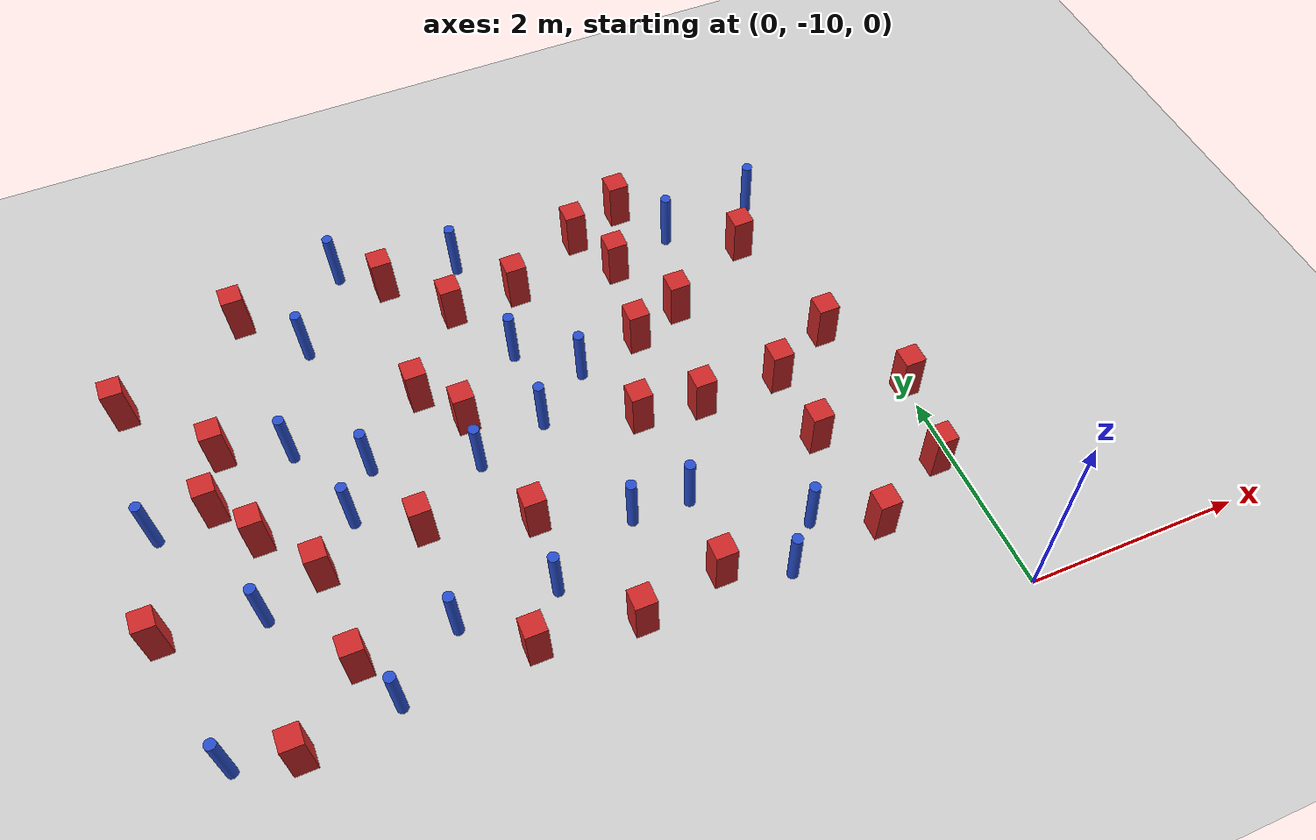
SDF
<sdf version="1.6">
 <world name="default">
  <model name="ground_plane">
   <static>1</static>
   <link name="link">
    <collision name="collision">
     <geometry><plane><normal>0 0 1</normal><size>100 100</size></plane></geometry>
     <surface><friction><ode><mu>100</mu><mu2>50</mu2></ode></friction></surface>
    </collision>
    <visual name="visual">
     <cast_shadows>0</cast_shadows>
     <geometry><plane><normal>0 0 1</normal><size>100 100</size></plane></geometry>
     <material>
      <ambient>1.0 1.0 1.0 1.0</ambient>
      <diffuse>0.8 0.8 0.8 1.0</diffuse>
      <specular>0.01 0.01 0.01 1.000000</specular>
     </material>
    </visual>
   </link>
  </model>
  <model name="pole_obstacle2">
   <static>true</static>
   <pose>-2.87501459005 -8.10694990462 2.88873142074e-08 -9.90536692318e-09 4.6021994893e-07 -1.20965994988e-07</pose>
   <link name="link">
    <pose>0 0 0.3 0 -0 0</pose>
    <inertial>
     <mass>1</mass>
     <inertia><ixx>0.145833</ixx><ixy>0</ixy><ixz>0</ixz><iyy>0.145833</iyy><iyz>0</iyz><izz>0.125</izz></inertia>
    </inertial>
    <collision name="collision">
     <geometry><cylinder><radius>0.05</radius><length>.6</length></cylinder></geometry>
    </collision>
    <visual name="visual">
     <geometry><cylinder><radius>0.05</radius><length>.6</length></cylinder></geometry>
     <material>
      <script><name>Gazebo/Blue</name><uri>file://media/materials/scripts/gazebo.material</uri></script>
     </material>
    </visual>
   </link>
  </model>
  <model name="pole_obstacle4">
   <static>true</static>
   <pose>-3.90233970964 -7.05207749594 2.88873142074e-08 -9.90536689859e-09 4.60219948989e-07 -1.20965994961e-07</pose>
   <link name="link">
    <pose>0 0 0.3 0 -0 0</pose>
    <inertial>
     <mass>1</mass>
     <inertia><ixx>0.145833</ixx><ixy>0</ixy><ixz>0</ixz><iyy>0.145833</iyy><iyz>0</iyz><izz>0.125</izz></inertia>
    </inertial>
    <collision name="collision">
     <geometry><cylinder><radius>0.05</radius><length>.6</length></cylinder></geometry>
    </collision>
    <visual name="visual">
     <geometry><cylinder><radius>0.05</radius><length>.6</length></cylinder></geometry>
     <material>
      <script><name>Gazebo/Blue</name><uri>file://media/materials/scripts/gazebo.material</uri></script>
     </material>
    </visual>
   </link>
  </model>
  <model name="square_post_obstacle8">
   <static>true</static>
   <pose>-3.8739137678 -6.55209940469 8.22691968438e-08 7.22125133819e-06 -7.54495500217e-07 2.29674213826e-05</pose>
   <link name="link">
    <pose>0 0 0.25 0 -0 0</pose>
    <inertial>
     <mass>100</mass>
     <inertia>
      <ixx>0.166667</ixx>
      <ixy>0</ixy>
      <ixz>0</ixz>
      <iyy>0.166667</iyy>
      <iyz>0</iyz>
      <izz>0.166667</izz>
     </inertia>
    </inertial>
    <collision name="collision"><geometry><box><size>.2 .2 .5</size></box></geometry></collision>
    <visual name="visual">
     <geometry><box><size>.2 .2 .5</size></box></geometry>
     <material>
      <script><name>Gazebo/Red</name><uri>file://media/materials/scripts/gazebo.material</uri></script>
     </material>
    </visual>
   </link>
  </model>
  <model name="square_post_obstacle12">
   <static>true</static>
   <pose>-0.0130934757853 -7.77081000379 8.22691968438e-08 7.2212513382e-06 -7.54495500217e-07 2.29674213826e-05</pose>
   <link name="link">
    <pose>0 0 0.25 0 -0 0</pose>
    <inertial>
     <mass>100</mass>
     <inertia>
      <ixx>0.166667</ixx>
      <ixy>0</ixy>
      <ixz>0</ixz>
      <iyy>0.166667</iyy>
      <iyz>0</iyz>
      <izz>0.166667</izz>
     </inertia>
    </inertial>
    <collision name="collision"><geometry><box><size>.2 .2 .5</size></box></geometry></collision>
    <visual name="visual">
     <geometry><box><size>.2 .2 .5</size></box></geometry>
     <material>
      <script><name>Gazebo/Red</name><uri>file://media/materials/scripts/gazebo.material</uri></script>
     </material>
    </visual>
   </link>
  </model>
  <model name="square_post_obstacle16">
   <static>true</static>
   <pose>-2.38865668269 -8.89311155857 8.22691968438e-08 7.22125133819e-06 -7.54495500217e-07 2.29674213826e-05</pose>
   <link name="link">
    <pose>0 0 0.25 0 -0 0</pose>
    <inertial>
     <mass>100</mass>
     <inertia>
      <ixx>0.166667</ixx>
      <ixy>0</ixy>
      <ixz>0</ixz>
      <iyy>0.166667</iyy>
      <iyz>0</iyz>
      <izz>0.166667</izz>
     </inertia>
    </inertial>
    <collision name="collision"><geometry><box><size>.2 .2 .5</size></box></geometry></collision>
    <visual name="visual">
     <geometry><box><size>.2 .2 .5</size></box></geometry>
     <material>
      <script><name>Gazebo/Red</name><uri>file://media/materials/scripts/gazebo.material</uri></script>
     </material>
    </visual>
   </link>
  </model>
  <model name="pole_obstacle10">
   <static>true</static>
   <pose>-4.81307879452 -6.70881083257 2.88873142074e-08 -9.90536690842e-09 4.60219948965e-07 -1.20965994976e-07</pose>
   <link name="link">
    <pose>0 0 0.3 0 -0 0</pose>
    <inertial>
     <mass>1</mass>
     <inertia><ixx>0.145833</ixx><ixy>0</ixy><ixz>0</ixz><iyy>0.145833</iyy><iyz>0</iyz><izz>0.125</izz></inertia>
    </inertial>
    <collision name="collision">
     <geometry><cylinder><radius>0.05</radius><length>.6</length></cylinder></geometry>
    </collision>
    <visual name="visual">
     <geometry><cylinder><radius>0.05</radius><length>.6</length></cylinder></geometry>
     <material>
      <script><name>Gazebo/Blue</name><uri>file://media/materials/scripts/gazebo.material</uri></script>
     </material>
    </visual>
   </link>
  </model>
  <model name="pole_obstacle17">
   <static>true</static>
   <pose>-5.20295871244 -8.97434271255 2.88873142074e-08 -9.9053668967e-09 4.60219948993e-07 -1.20965994957e-07</pose>
   <link name="link">
    <pose>0 0 0.3 0 -0 0</pose>
    <inertial>
     <mass>1</mass>
     <inertia><ixx>0.145833</ixx><ixy>0</ixy><ixz>0</ixz><iyy>0.145833</iyy><iyz>0</iyz><izz>0.125</izz></inertia>
    </inertial>
    <collision name="collision">
     <geometry><cylinder><radius>0.05</radius><length>.6</length></cylinder></geometry>
    </collision>
    <visual name="visual">
     <geometry><cylinder><radius>0.05</radius><length>.6</length></cylinder></geometry>
     <material>
      <script><name>Gazebo/Blue</name><uri>file://media/materials/scripts/gazebo.material</uri></script>
     </material>
    </visual>
   </link>
  </model>
  <model name="pole_obstacle20">
   <static>true</static>
   <pose>-1.83056929035 -9.12082638612 2.88873142074e-08 -9.90536690474e-09 4.60219948974e-07 -1.2096599497e-07</pose>
   <link name="link">
    <pose>0 0 0.3 0 -0 0</pose>
    <inertial>
     <mass>1</mass>
     <inertia><ixx>0.145833</ixx><ixy>0</ixy><ixz>0</ixz><iyy>0.145833</iyy><iyz>0</iyz><izz>0.125</izz></inertia>
    </inertial>
    <collision name="collision">
     <geometry><cylinder><radius>0.05</radius><length>.6</length></cylinder></geometry>
    </collision>
    <visual name="visual">
     <geometry><cylinder><radius>0.05</radius><length>.6</length></cylinder></geometry>
     <material>
      <script><name>Gazebo/Blue</name><uri>file://media/materials/scripts/gazebo.material</uri></script>
     </material>
    </visual>
   </link>
  </model>
  <model name="pole_obstacle31">
   <static>true</static>
   <pose>-3.22397470555 -5.99416637873 2.88873142074e-08 -9.90536692062e-09 4.60219948937e-07 -1.20965994985e-07</pose>
   <link name="link">
    <pose>0 0 0.3 0 -0 0</pose>
    <inertial>
     <mass>1</mass>
     <inertia><ixx>0.145833</ixx><ixy>0</ixy><ixz>0</ixz><iyy>0.145833</iyy><iyz>0</iyz><izz>0.125</izz></inertia>
    </inertial>
    <collision name="collision">
     <geometry><cylinder><radius>0.05</radius><length>.6</length></cylinder></geometry>
    </collision>
    <visual name="visual">
     <geometry><cylinder><radius>0.05</radius><length>.6</length></cylinder></geometry>
     <material>
      <script><name>Gazebo/Blue</name><uri>file://media/materials/scripts/gazebo.material</uri></script>
     </material>
    </visual>
   </link>
  </model>
  <model name="pole_obstacle36">
   <static>true</static>
   <pose>-5.00088033655 -5.20530753495 2.88873142074e-08 -9.90536690842e-09 4.60219948965e-07 -1.20965994976e-07</pose>
   <link name="link">
    <pose>0 0 0.3 0 -0 0</pose>
    <inertial>
     <mass>1</mass>
     <inertia><ixx>0.145833</ixx><ixy>0</ixy><ixz>0</ixz><iyy>0.145833</iyy><iyz>0</iyz><izz>0.125</izz></inertia>
    </inertial>
    <collision name="collision">
     <geometry><cylinder><radius>0.05</radius><length>.6</length></cylinder></geometry>
    </collision>
    <visual name="visual">
     <geometry><cylinder><radius>0.05</radius><length>.6</length></cylinder></geometry>
     <material>
      <script><name>Gazebo/Blue</name><uri>file://media/materials/scripts/gazebo.material</uri></script>
     </material>
    </visual>
   </link>
  </model>
  <model name="square_post_obstacle45">
   <static>true</static>
   <pose>-3.16748743163 -9.05147158468 8.22691968438e-08 7.22125133819e-06 -7.54495500217e-07 2.29674213826e-05</pose>
   <link name="link">
    <pose>0 0 0.25 0 -0 0</pose>
    <inertial>
     <mass>100</mass>
     <inertia>
      <ixx>0.166667</ixx>
      <ixy>0</ixy>
      <ixz>0</ixz>
      <iyy>0.166667</iyy>
      <iyz>0</iyz>
      <izz>0.166667</izz>
     </inertia>
    </inertial>
    <collision name="collision"><geometry><box><size>.2 .2 .5</size></box></geometry></collision>
    <visual name="visual">
     <geometry><box><size>.2 .2 .5</size></box></geometry>
     <material>
      <script><name>Gazebo/Red</name><uri>file://media/materials/scripts/gazebo.material</uri></script>
     </material>
    </visual>
   </link>
  </model>
  <model name="pole_obstacle49">
   <static>true</static>
   <pose>-5.4167512751 -6.29608324844 2.88873142074e-08 -9.90536690842e-09 4.60219948965e-07 -1.20965994976e-07</pose>
   <link name="link">
    <pose>0 0 0.3 0 -0 0</pose>
    <inertial>
     <mass>1</mass>
     <inertia><ixx>0.145833</ixx><ixy>0</ixy><ixz>0</ixz><iyy>0.145833</iyy><iyz>0</iyz><izz>0.125</izz></inertia>
    </inertial>
    <collision name="collision">
     <geometry><cylinder><radius>0.05</radius><length>.6</length></cylinder></geometry>
    </collision>
    <visual name="visual">
     <geometry><cylinder><radius>0.05</radius><length>.6</length></cylinder></geometry>
     <material>
      <script><name>Gazebo/Blue</name><uri>file://media/materials/scripts/gazebo.material</uri></script>
     </material>
    </visual>
   </link>
  </model>
  <model name="square_post_obstacle56">
   <static>true</static>
   <pose>-5.41987008127 -8.52091306603 8.22691968438e-08 7.22125133819e-06 -7.54495500217e-07 2.29674213826e-05</pose>
   <link name="link">
    <pose>0 0 0.25 0 -0 0</pose>
    <inertial>
     <mass>100</mass>
     <inertia>
      <ixx>0.166667</ixx>
      <ixy>0</ixy>
      <ixz>0</ixz>
      <iyy>0.166667</iyy>
      <iyz>0</iyz>
      <izz>0.166667</izz>
     </inertia>
    </inertial>
    <collision name="collision"><geometry><box><size>.2 .2 .5</size></box></geometry></collision>
    <visual name="visual">
     <geometry><box><size>.2 .2 .5</size></box></geometry>
     <material>
      <script><name>Gazebo/Red</name><uri>file://media/materials/scripts/gazebo.material</uri></script>
     </material>
    </visual>
   </link>
  </model>
  <model name="square_post_obstacle62">
   <static>true</static>
   <pose>-3.60067926143 -5.30959213133 8.22691968438e-08 7.22125133819e-06 -7.54495500217e-07 2.29674213826e-05</pose>
   <link name="link">
    <pose>0 0 0.25 0 -0 0</pose>
    <inertial>
     <mass>100</mass>
     <inertia>
      <ixx>0.166667</ixx>
      <ixy>0</ixy>
      <ixz>0</ixz>
      <iyy>0.166667</iyy>
      <iyz>0</iyz>
      <izz>0.166667</izz>
     </inertia>
    </inertial>
    <collision name="collision"><geometry><box><size>.2 .2 .5</size></box></geometry></collision>
    <visual name="visual">
     <geometry><box><size>.2 .2 .5</size></box></geometry>
     <material>
      <script><name>Gazebo/Red</name><uri>file://media/materials/scripts/gazebo.material</uri></script>
     </material>
    </visual>
   </link>
  </model>
  <model name="square_post_obstacle64">
   <static>true</static>
   <pose>-0.444316290733 -6.91461727366 8.22691968438e-08 7.22125133819e-06 -7.54495500217e-07 2.29674213826e-05</pose>
   <link name="link">
    <pose>0 0 0.25 0 -0 0</pose>
    <inertial>
     <mass>100</mass>
     <inertia>
      <ixx>0.166667</ixx>
      <ixy>0</ixy>
      <ixz>0</ixz>
      <iyy>0.166667</iyy>
      <iyz>0</iyz>
      <izz>0.166667</izz>
     </inertia>
    </inertial>
    <collision name="collision"><geometry><box><size>.2 .2 .5</size></box></geometry></collision>
    <visual name="visual">
     <geometry><box><size>.2 .2 .5</size></box></geometry>
     <material>
      <script><name>Gazebo/Red</name><uri>file://media/materials/scripts/gazebo.material</uri></script>
     </material>
    </visual>
   </link>
  </model>
  <model name="pole_obstacle64">
   <static>true</static>
   <pose>-1.32270077542 -5.1866796081 2.88873142074e-08 -9.90536689852e-09 4.60219948989e-07 -1.2096599496e-07</pose>
   <link name="link">
    <pose>0 0 0.3 0 -0 0</pose>
    <inertial>
     <mass>1</mass>
     <inertia><ixx>0.145833</ixx><ixy>0</ixy><ixz>0</ixz><iyy>0.145833</iyy><iyz>0</iyz><izz>0.125</izz></inertia>
    </inertial>
    <collision name="collision">
     <geometry><cylinder><radius>0.05</radius><length>.6</length></cylinder></geometry>
    </collision>
    <visual name="visual">
     <geometry><cylinder><radius>0.05</radius><length>.6</length></cylinder></geometry>
     <material>
      <script><name>Gazebo/Blue</name><uri>file://media/materials/scripts/gazebo.material</uri></script>
     </material>
    </visual>
   </link>
  </model>
  <model name="square_post_obstacle73">
   <static>true</static>
   <pose>-1.04860447023 -7.98856468562 8.22691968438e-08 7.2212513382e-06 -7.54495500217e-07 2.29674213826e-05</pose>
   <link name="link">
    <pose>0 0 0.25 0 -0 0</pose>
    <inertial>
     <mass>100</mass>
     <inertia>
      <ixx>0.166667</ixx>
      <ixy>0</ixy>
      <ixz>0</ixz>
      <iyy>0.166667</iyy>
      <iyz>0</iyz>
      <izz>0.166667</izz>
     </inertia>
    </inertial>
    <collision name="collision"><geometry><box><size>.2 .2 .5</size></box></geometry></collision>
    <visual name="visual">
     <geometry><box><size>.2 .2 .5</size></box></geometry>
     <material>
      <script><name>Gazebo/Red</name><uri>file://media/materials/scripts/gazebo.material</uri></script>
     </material>
    </visual>
   </link>
  </model>
  <model name="pole_obstacle73">
   <static>true</static>
   <pose>-2.34393781805 -8.12023684867 2.88873142074e-08 -9.90536692318e-09 4.6021994893e-07 -1.20965994988e-07</pose>
   <link name="link">
    <pose>0 0 0.3 0 -0 0</pose>
    <inertial>
     <mass>1</mass>
     <inertia><ixx>0.145833</ixx><ixy>0</ixy><ixz>0</ixz><iyy>0.145833</iyy><iyz>0</iyz><izz>0.125</izz></inertia>
    </inertial>
    <collision name="collision">
     <geometry><cylinder><radius>0.05</radius><length>.6</length></cylinder></geometry>
    </collision>
    <visual name="visual">
     <geometry><cylinder><radius>0.05</radius><length>.6</length></cylinder></geometry>
     <material>
      <script><name>Gazebo/Blue</name><uri>file://media/materials/scripts/gazebo.material</uri></script>
     </material>
    </visual>
   </link>
  </model>
  <model name="pole_obstacle79">
   <static>true</static>
   <pose>-6.00702644453 -7.81089971821 2.88873142074e-08 -9.90536690842e-09 4.60219948965e-07 -1.20965994976e-07</pose>
   <link name="link">
    <pose>0 0 0.3 0 -0 0</pose>
    <inertial>
     <mass>1</mass>
     <inertia><ixx>0.145833</ixx><ixy>0</ixy><ixz>0</ixz><iyy>0.145833</iyy><iyz>0</iyz><izz>0.125</izz></inertia>
    </inertial>
    <collision name="collision">
     <geometry><cylinder><radius>0.05</radius><length>.6</length></cylinder></geometry>
    </collision>
    <visual name="visual">
     <geometry><cylinder><radius>0.05</radius><length>.6</length></cylinder></geometry>
     <material>
      <script><name>Gazebo/Blue</name><uri>file://media/materials/scripts/gazebo.material</uri></script>
     </material>
    </visual>
   </link>
  </model>
  <model name="square_post_obstacle78">
   <static>true</static>
   <pose>-6.86558664157 -7.67625481982 8.22691968438e-08 7.22125133819e-06 -7.54495500217e-07 2.29674213826e-05</pose>
   <link name="link">
    <pose>0 0 0.25 0 -0 0</pose>
    <inertial>
     <mass>100</mass>
     <inertia>
      <ixx>0.166667</ixx>
      <ixy>0</ixy>
      <ixz>0</ixz>
      <iyy>0.166667</iyy>
      <iyz>0</iyz>
      <izz>0.166667</izz>
     </inertia>
    </inertial>
    <collision name="collision"><geometry><box><size>.2 .2 .5</size></box></geometry></collision>
    <visual name="visual">
     <geometry><box><size>.2 .2 .5</size></box></geometry>
     <material>
      <script><name>Gazebo/Red</name><uri>file://media/materials/scripts/gazebo.material</uri></script>
     </material>
    </visual>
   </link>
  </model>
  <model name="square_post_obstacle79">
   <static>true</static>
   <pose>-6.17730175886 -6.61611261569 8.22691968438e-08 7.22125133819e-06 -7.54495500217e-07 2.29674213826e-05</pose>
   <link name="link">
    <pose>0 0 0.25 0 -0 0</pose>
    <inertial>
     <mass>100</mass>
     <inertia>
      <ixx>0.166667</ixx>
      <ixy>0</ixy>
      <ixz>0</ixz>
      <iyy>0.166667</iyy>
      <iyz>0</iyz>
      <izz>0.166667</izz>
     </inertia>
    </inertial>
    <collision name="collision"><geometry><box><size>.2 .2 .5</size></box></geometry></collision>
    <visual name="visual">
     <geometry><box><size>.2 .2 .5</size></box></geometry>
     <material>
      <script><name>Gazebo/Red</name><uri>file://media/materials/scripts/gazebo.material</uri></script>
     </material>
    </visual>
   </link>
  </model>
  <model name="pole_obstacle80">
   <static>true</static>
   <pose>-5.09871578943 -7.17373712092 2.88873142074e-08 -9.90536690842e-09 4.60219948965e-07 -1.20965994976e-07</pose>
   <link name="link">
    <pose>0 0 0.3 0 -0 0</pose>
    <inertial>
     <mass>1</mass>
     <inertia><ixx>0.145833</ixx><ixy>0</ixy><ixz>0</ixz><iyy>0.145833</iyy><iyz>0</iyz><izz>0.125</izz></inertia>
    </inertial>
    <collision name="collision">
     <geometry><cylinder><radius>0.05</radius><length>.6</length></cylinder></geometry>
    </collision>
    <visual name="visual">
     <geometry><cylinder><radius>0.05</radius><length>.6</length></cylinder></geometry>
     <material>
      <script><name>Gazebo/Blue</name><uri>file://media/materials/scripts/gazebo.material</uri></script>
     </material>
    </visual>
   </link>
  </model>
  <model name="square_post_obstacle85">
   <static>true</static>
   <pose>-1.60249098794 -6.11279621864 8.22691968438e-08 7.2212513382e-06 -7.54495500217e-07 2.29674213826e-05</pose>
   <link name="link">
    <pose>0 0 0.25 0 -0 0</pose>
    <inertial>
     <mass>100</mass>
     <inertia>
      <ixx>0.166667</ixx>
      <ixy>0</ixy>
      <ixz>0</ixz>
      <iyy>0.166667</iyy>
      <iyz>0</iyz>
      <izz>0.166667</izz>
     </inertia>
    </inertial>
    <collision name="collision"><geometry><box><size>.2 .2 .5</size></box></geometry></collision>
    <visual name="visual">
     <geometry><box><size>.2 .2 .5</size></box></geometry>
     <material>
      <script><name>Gazebo/Red</name><uri>file://media/materials/scripts/gazebo.material</uri></script>
     </material>
    </visual>
   </link>
  </model>
  <model name="pole_obstacle97">
   <static>true</static>
   <pose>-1.47623477414 -8.73532969392 2.88873142074e-08 -9.90536690474e-09 4.60219948974e-07 -1.2096599497e-07</pose>
   <link name="link">
    <pose>0 0 0.3 0 -0 0</pose>
    <inertial>
     <mass>1</mass>
     <inertia><ixx>0.145833</ixx><ixy>0</ixy><ixz>0</ixz><iyy>0.145833</iyy><iyz>0</iyz><izz>0.125</izz></inertia>
    </inertial>
    <collision name="collision">
     <geometry><cylinder><radius>0.05</radius><length>.6</length></cylinder></geometry>
    </collision>
    <visual name="visual">
     <geometry><cylinder><radius>0.05</radius><length>.6</length></cylinder></geometry>
     <material>
      <script><name>Gazebo/Blue</name><uri>file://media/materials/scripts/gazebo.material</uri></script>
     </material>
    </visual>
   </link>
  </model>
  <model name="square_post_obstacle90">
   <static>true</static>
   <pose>-0.711123490053 -5.60636521563 8.22691968438e-08 7.22125133819e-06 -7.54495500217e-07 2.29674213826e-05</pose>
   <link name="link">
    <pose>0 0 0.25 0 -0 0</pose>
    <inertial>
     <mass>100</mass>
     <inertia>
      <ixx>0.166667</ixx>
      <ixy>0</ixy>
      <ixz>0</ixz>
      <iyy>0.166667</iyy>
      <iyz>0</iyz>
      <izz>0.166667</izz>
     </inertia>
    </inertial>
    <collision name="collision"><geometry><box><size>.2 .2 .5</size></box></geometry></collision>
    <visual name="visual">
     <geometry><box><size>.2 .2 .5</size></box></geometry>
     <material>
      <script><name>Gazebo/Red</name><uri>file://media/materials/scripts/gazebo.material</uri></script>
     </material>
    </visual>
   </link>
  </model>
  <model name="square_post_obstacle101">
   <static>true</static>
   <pose>-2.42103531964 -7.1605160482 8.22691968438e-08 7.2212513382e-06 -7.54495500217e-07 2.29674213826e-05</pose>
   <link name="link">
    <pose>0 0 0.25 0 -0 0</pose>
    <inertial>
     <mass>100</mass>
     <inertia>
      <ixx>0.166667</ixx>
      <ixy>0</ixy>
      <ixz>0</ixz>
      <iyy>0.166667</iyy>
      <iyz>0</iyz>
      <izz>0.166667</izz>
     </inertia>
    </inertial>
    <collision name="collision"><geometry><box><size>.2 .2 .5</size></box></geometry></collision>
    <visual name="visual">
     <geometry><box><size>.2 .2 .5</size></box></geometry>
     <material>
      <script><name>Gazebo/Red</name><uri>file://media/materials/scripts/gazebo.material</uri></script>
     </material>
    </visual>
   </link>
  </model>
  <model name="square_post_obstacle104">
   <static>true</static>
   <pose>-6.0065167676 -6.06761775669 8.22691968438e-08 7.2212513382e-06 -7.54495500217e-07 2.29674213826e-05</pose>
   <link name="link">
    <pose>0 0 0.25 0 -0 0</pose>
    <inertial>
     <mass>100</mass>
     <inertia>
      <ixx>0.166667</ixx>
      <ixy>0</ixy>
      <ixz>0</ixz>
      <iyy>0.166667</iyy>
      <iyz>0</iyz>
      <izz>0.166667</izz>
     </inertia>
    </inertial>
    <collision name="collision"><geometry><box><size>.2 .2 .5</size></box></geometry></collision>
    <visual name="visual">
     <geometry><box><size>.2 .2 .5</size></box></geometry>
     <material>
      <script><name>Gazebo/Red</name><uri>file://media/materials/scripts/gazebo.material</uri></script>
     </material>
    </visual>
   </link>
  </model>
  <model name="square_post_obstacle106">
   <static>true</static>
   <pose>-4.56661669629 -7.51678423853 8.22691968438e-08 7.22125133819e-06 -7.54495500217e-07 2.29674213826e-05</pose>
   <link name="link">
    <pose>0 0 0.25 0 -0 0</pose>
    <inertial>
     <mass>100</mass>
     <inertia>
      <ixx>0.166667</ixx>
      <ixy>0</ixy>
      <ixz>0</ixz>
      <iyy>0.166667</iyy>
      <iyz>0</iyz>
      <izz>0.166667</izz>
     </inertia>
    </inertial>
    <collision name="collision"><geometry><box><size>.2 .2 .5</size></box></geometry></collision>
    <visual name="visual">
     <geometry><box><size>.2 .2 .5</size></box></geometry>
     <material>
      <script><name>Gazebo/Red</name><uri>file://media/materials/scripts/gazebo.material</uri></script>
     </material>
    </visual>
   </link>
  </model>
  <model name="square_post_obstacle109">
   <static>true</static>
   <pose>-5.88440980798 -7.06308717809 8.22691968438e-08 7.2212513382e-06 -7.54495500217e-07 2.29674213826e-05</pose>
   <link name="link">
    <pose>0 0 0.25 0 -0 0</pose>
    <inertial>
     <mass>100</mass>
     <inertia>
      <ixx>0.166667</ixx>
      <ixy>0</ixy>
      <ixz>0</ixz>
      <iyy>0.166667</iyy>
      <iyz>0</iyz>
      <izz>0.166667</izz>
     </inertia>
    </inertial>
    <collision name="collision"><geometry><box><size>.2 .2 .5</size></box></geometry></collision>
    <visual name="visual">
     <geometry><box><size>.2 .2 .5</size></box></geometry>
     <material>
      <script><name>Gazebo/Red</name><uri>file://media/materials/scripts/gazebo.material</uri></script>
     </material>
    </visual>
   </link>
  </model>
  <model name="square_post_obstacle110">
   <static>true</static>
   <pose>-4.10595389363 -4.73077965813 8.22691968438e-08 7.22125133819e-06 -7.54495500217e-07 2.29674213826e-05</pose>
   <link name="link">
    <pose>0 0 0.25 0 -0 0</pose>
    <inertial>
     <mass>100</mass>
     <inertia>
      <ixx>0.166667</ixx>
      <ixy>0</ixy>
      <ixz>0</ixz>
      <iyy>0.166667</iyy>
      <iyz>0</iyz>
      <izz>0.166667</izz>
     </inertia>
    </inertial>
    <collision name="collision"><geometry><box><size>.2 .2 .5</size></box></geometry></collision>
    <visual name="visual">
     <geometry><box><size>.2 .2 .5</size></box></geometry>
     <material>
      <script><name>Gazebo/Red</name><uri>file://media/materials/scripts/gazebo.material</uri></script>
     </material>
    </visual>
   </link>
  </model>
  <model name="pole_obstacle128">
   <static>true</static>
   <pose>-4.58637959691 -8.50072938821 2.88873142074e-08 -9.9053668967e-09 4.60219948993e-07 -1.20965994957e-07</pose>
   <link name="link">
    <pose>0 0 0.3 0 -0 0</pose>
    <inertial>
     <mass>1</mass>
     <inertia><ixx>0.145833</ixx><ixy>0</ixy><ixz>0</ixz><iyy>0.145833</iyy><iyz>0</iyz><izz>0.125</izz></inertia>
    </inertial>
    <collision name="collision">
     <geometry><cylinder><radius>0.05</radius><length>.6</length></cylinder></geometry>
    </collision>
    <visual name="visual">
     <geometry><cylinder><radius>0.05</radius><length>.6</length></cylinder></geometry>
     <material>
      <script><name>Gazebo/Blue</name><uri>file://media/materials/scripts/gazebo.material</uri></script>
     </material>
    </visual>
   </link>
  </model>
  <model name="square_post_obstacle119">
   <static>true</static>
   <pose>-0.935623788651 -9.00504862148 8.22691968438e-08 7.22125133819e-06 -7.54495500217e-07 2.29674213826e-05</pose>
   <link name="link">
    <pose>0 0 0.25 0 -0 0</pose>
    <inertial>
     <mass>100</mass>
     <inertia>
      <ixx>0.166667</ixx>
      <ixy>0</ixy>
      <ixz>0</ixz>
      <iyy>0.166667</iyy>
      <iyz>0</iyz>
      <izz>0.166667</izz>
     </inertia>
    </inertial>
    <collision name="collision"><geometry><box><size>.2 .2 .5</size></box></geometry></collision>
    <visual name="visual">
     <geometry><box><size>.2 .2 .5</size></box></geometry>
     <material>
      <script><name>Gazebo/Red</name><uri>file://media/materials/scripts/gazebo.material</uri></script>
     </material>
    </visual>
   </link>
  </model>
  <model name="square_post_obstacle127">
   <static>true</static>
   <pose>-1.07332687941 -7.24230760317 8.22691968438e-08 7.22125133819e-06 -7.54495500217e-07 2.29674213826e-05</pose>
   <link name="link">
    <pose>0 0 0.25 0 -0 0</pose>
    <inertial>
     <mass>100</mass>
     <inertia>
      <ixx>0.166667</ixx>
      <ixy>0</ixy>
      <ixz>0</ixz>
      <iyy>0.166667</iyy>
      <iyz>0</iyz>
      <izz>0.166667</izz>
     </inertia>
    </inertial>
    <collision name="collision"><geometry><box><size>.2 .2 .5</size></box></geometry></collision>
    <visual name="visual">
     <geometry><box><size>.2 .2 .5</size></box></geometry>
     <material>
      <script><name>Gazebo/Red</name><uri>file://media/materials/scripts/gazebo.material</uri></script>
     </material>
    </visual>
   </link>
  </model>
  <model name="square_post_obstacle134">
   <static>true</static>
   <pose>-3.65511461804 -7.80721237582 8.22691968438e-08 7.22125133819e-06 -7.54495500217e-07 2.29674213826e-05</pose>
   <link name="link">
    <pose>0 0 0.25 0 -0 0</pose>
    <inertial>
     <mass>100</mass>
     <inertia>
      <ixx>0.166667</ixx>
      <ixy>0</ixy>
      <ixz>0</ixz>
      <iyy>0.166667</iyy>
      <iyz>0</iyz>
      <izz>0.166667</izz>
     </inertia>
    </inertial>
    <collision name="collision"><geometry><box><size>.2 .2 .5</size></box></geometry></collision>
    <visual name="visual">
     <geometry><box><size>.2 .2 .5</size></box></geometry>
     <material>
      <script><name>Gazebo/Red</name><uri>file://media/materials/scripts/gazebo.material</uri></script>
     </material>
    </visual>
   </link>
  </model>
  <model name="square_post_obstacle135">
   <static>true</static>
   <pose>-6.71519197745 -5.27325532344 8.22691968438e-08 7.22125133819e-06 -7.54495500217e-07 2.29674213826e-05</pose>
   <link name="link">
    <pose>0 0 0.25 0 -0 0</pose>
    <inertial>
     <mass>100</mass>
     <inertia>
      <ixx>0.166667</ixx>
      <ixy>0</ixy>
      <ixz>0</ixz>
      <iyy>0.166667</iyy>
      <iyz>0</iyz>
      <izz>0.166667</izz>
     </inertia>
    </inertial>
    <collision name="collision"><geometry><box><size>.2 .2 .5</size></box></geometry></collision>
    <visual name="visual">
     <geometry><box><size>.2 .2 .5</size></box></geometry>
     <material>
      <script><name>Gazebo/Red</name><uri>file://media/materials/scripts/gazebo.material</uri></script>
     </material>
    </visual>
   </link>
  </model>
  <model name="square_post_obstacle140">
   <static>true</static>
   <pose>-4.05239754775 -8.93911786411 8.22691968438e-08 7.22125133819e-06 -7.54495500217e-07 2.29674213826e-05</pose>
   <link name="link">
    <pose>0 0 0.25 0 -0 0</pose>
    <inertial>
     <mass>100</mass>
     <inertia>
      <ixx>0.166667</ixx>
      <ixy>0</ixy>
      <ixz>0</ixz>
      <iyy>0.166667</iyy>
      <iyz>0</iyz>
      <izz>0.166667</izz>
     </inertia>
    </inertial>
    <collision name="collision"><geometry><box><size>.2 .2 .5</size></box></geometry></collision>
    <visual name="visual">
     <geometry><box><size>.2 .2 .5</size></box></geometry>
     <material>
      <script><name>Gazebo/Red</name><uri>file://media/materials/scripts/gazebo.material</uri></script>
     </material>
    </visual>
   </link>
  </model>
  <model name="pole_obstacle151">
   <static>true</static>
   <pose>-3.70688151041 -8.49361152509 2.88873142074e-08 -9.9053668994e-09 4.60219948987e-07 -1.20965994963e-07</pose>
   <link name="link">
    <pose>0 0 0.3 0 -0 0</pose>
    <inertial>
     <mass>1</mass>
     <inertia><ixx>0.145833</ixx><ixy>0</ixy><ixz>0</ixz><iyy>0.145833</iyy><iyz>0</iyz><izz>0.125</izz></inertia>
    </inertial>
    <collision name="collision">
     <geometry><cylinder><radius>0.05</radius><length>.6</length></cylinder></geometry>
    </collision>
    <visual name="visual">
     <geometry><cylinder><radius>0.05</radius><length>.6</length></cylinder></geometry>
     <material>
      <script><name>Gazebo/Blue</name><uri>file://media/materials/scripts/gazebo.material</uri></script>
     </material>
    </visual>
   </link>
  </model>
  <model name="square_post_obstacle143">
   <static>true</static>
   <pose>-0.174627983164 -8.62948894129 8.22691968438e-08 7.22125133819e-06 -7.54495500217e-07 2.29674213826e-05</pose>
   <link name="link">
    <pose>0 0 0.25 0 -0 0</pose>
    <inertial>
     <mass>100</mass>
     <inertia>
      <ixx>0.166667</ixx>
      <ixy>0</ixy>
      <ixz>0</ixz>
      <iyy>0.166667</iyy>
      <iyz>0</iyz>
      <izz>0.166667</izz>
     </inertia>
    </inertial>
    <collision name="collision"><geometry><box><size>.2 .2 .5</size></box></geometry></collision>
    <visual name="visual">
     <geometry><box><size>.2 .2 .5</size></box></geometry>
     <material>
      <script><name>Gazebo/Red</name><uri>file://media/materials/scripts/gazebo.material</uri></script>
     </material>
    </visual>
   </link>
  </model>
  <model name="pole_obstacle155">
   <static>true</static>
   <pose>-6.56018588632 -8.96598863261 2.88873142074e-08 -9.9053668967e-09 4.60219948993e-07 -1.20965994957e-07</pose>
   <link name="link">
    <pose>0 0 0.3 0 -0 0</pose>
    <inertial>
     <mass>1</mass>
     <inertia><ixx>0.145833</ixx><ixy>0</ixy><ixz>0</ixz><iyy>0.145833</iyy><iyz>0</iyz><izz>0.125</izz></inertia>
    </inertial>
    <collision name="collision">
     <geometry><cylinder><radius>0.05</radius><length>.6</length></cylinder></geometry>
    </collision>
    <visual name="visual">
     <geometry><cylinder><radius>0.05</radius><length>.6</length></cylinder></geometry>
     <material>
      <script><name>Gazebo/Blue</name><uri>file://media/materials/scripts/gazebo.material</uri></script>
     </material>
    </visual>
   </link>
  </model>
  <model name="pole_obstacle167">
   <static>true</static>
   <pose>-0.406205504287 -5.10663396677 2.88873142074e-08 -9.90536689683e-09 4.60219948993e-07 -1.20965994957e-07</pose>
   <link name="link">
    <pose>0 0 0.3 0 -0 0</pose>
    <inertial>
     <mass>1</mass>
     <inertia><ixx>0.145833</ixx><ixy>0</ixy><ixz>0</ixz><iyy>0.145833</iyy><iyz>0</iyz><izz>0.125</izz></inertia>
    </inertial>
    <collision name="collision">
     <geometry><cylinder><radius>0.05</radius><length>.6</length></cylinder></geometry>
    </collision>
    <visual name="visual">
     <geometry><cylinder><radius>0.05</radius><length>.6</length></cylinder></geometry>
     <material>
      <script><name>Gazebo/Blue</name><uri>file://media/materials/scripts/gazebo.material</uri></script>
     </material>
    </visual>
   </link>
  </model>
  <model name="pole_obstacle170">
   <static>true</static>
   <pose>-2.7117111394 -6.4472717832 2.88873142074e-08 -9.90536689859e-09 4.60219948989e-07 -1.20965994961e-07</pose>
   <link name="link">
    <pose>0 0 0.3 0 -0 0</pose>
    <inertial>
     <mass>1</mass>
     <inertia><ixx>0.145833</ixx><ixy>0</ixy><ixz>0</ixz><iyy>0.145833</iyy><iyz>0</iyz><izz>0.125</izz></inertia>
    </inertial>
    <collision name="collision">
     <geometry><cylinder><radius>0.05</radius><length>.6</length></cylinder></geometry>
    </collision>
    <visual name="visual">
     <geometry><cylinder><radius>0.05</radius><length>.6</length></cylinder></geometry>
     <material>
      <script><name>Gazebo/Blue</name><uri>file://media/materials/scripts/gazebo.material</uri></script>
     </material>
    </visual>
   </link>
  </model>
  <model name="pole_obstacle175">
   <static>true</static>
   <pose>-3.38685640511 -4.73468383354 2.88873142074e-08 -9.90536689859e-09 4.60219948989e-07 -1.20965994961e-07</pose>
   <link name="link">
    <pose>0 0 0.3 0 -0 0</pose>
    <inertial>
     <mass>1</mass>
     <inertia><ixx>0.145833</ixx><ixy>0</ixy><ixz>0</ixz><iyy>0.145833</iyy><iyz>0</iyz><izz>0.125</izz></inertia>
    </inertial>
    <collision name="collision">
     <geometry><cylinder><radius>0.05</radius><length>.6</length></cylinder></geometry>
    </collision>
    <visual name="visual">
     <geometry><cylinder><radius>0.05</radius><length>.6</length></cylinder></geometry>
     <material>
      <script><name>Gazebo/Blue</name><uri>file://media/materials/scripts/gazebo.material</uri></script>
     </material>
    </visual>
   </link>
  </model>
  <model name="square_post_obstacle169">
   <static>true</static>
   <pose>-2.18996836248 -4.88358236178 8.22691968438e-08 7.2212513382e-06 -7.54495500217e-07 2.29674213826e-05</pose>
   <link name="link">
    <pose>0 0 0.25 0 -0 0</pose>
    <inertial>
     <mass>100</mass>
     <inertia>
      <ixx>0.166667</ixx>
      <ixy>0</ixy>
      <ixz>0</ixz>
      <iyy>0.166667</iyy>
      <iyz>0</iyz>
      <izz>0.166667</izz>
     </inertia>
    </inertial>
    <collision name="collision"><geometry><box><size>.2 .2 .5</size></box></geometry></collision>
    <visual name="visual">
     <geometry><box><size>.2 .2 .5</size></box></geometry>
     <material>
      <script><name>Gazebo/Red</name><uri>file://media/materials/scripts/gazebo.material</uri></script>
     </material>
    </visual>
   </link>
  </model>
  <model name="square_post_obstacle171">
   <static>true</static>
   <pose>-1.83773774698 -7.24254962484 8.22691968438e-08 7.2212513382e-06 -7.54495500217e-07 2.29674213826e-05</pose>
   <link name="link">
    <pose>0 0 0.25 0 -0 0</pose>
    <inertial>
     <mass>100</mass>
     <inertia>
      <ixx>0.166667</ixx>
      <ixy>0</ixy>
      <ixz>0</ixz>
      <iyy>0.166667</iyy>
      <iyz>0</iyz>
      <izz>0.166667</izz>
     </inertia>
    </inertial>
    <collision name="collision"><geometry><box><size>.2 .2 .5</size></box></geometry></collision>
    <visual name="visual">
     <geometry><box><size>.2 .2 .5</size></box></geometry>
     <material>
      <script><name>Gazebo/Red</name><uri>file://media/materials/scripts/gazebo.material</uri></script>
     </material>
    </visual>
   </link>
  </model>
  <model name="pole_obstacle187">
   <static>true</static>
   <pose>-4.49299511852 -4.39992117125 2.88873142074e-08 -9.90536690842e-09 4.60219948965e-07 -1.20965994976e-07</pose>
   <link name="link">
    <pose>0 0 0.3 0 -0 0</pose>
    <inertial>
     <mass>1</mass>
     <inertia><ixx>0.145833</ixx><ixy>0</ixy><ixz>0</ixz><iyy>0.145833</iyy><iyz>0</iyz><izz>0.125</izz></inertia>
    </inertial>
    <collision name="collision">
     <geometry><cylinder><radius>0.05</radius><length>.6</length></cylinder></geometry>
    </collision>
    <visual name="visual">
     <geometry><cylinder><radius>0.05</radius><length>.6</length></cylinder></geometry>
     <material>
      <script><name>Gazebo/Blue</name><uri>file://media/materials/scripts/gazebo.material</uri></script>
     </material>
    </visual>
   </link>
  </model>
  <model name="square_post_obstacle181">
   <static>true</static>
   <pose>-6.03057206512 -9.09295209107 8.22691968438e-08 7.22125133819e-06 -7.54495500217e-07 2.29674213826e-05</pose>
   <link name="link">
    <pose>0 0 0.25 0 -0 0</pose>
    <inertial>
     <mass>100</mass>
     <inertia>
      <ixx>0.166667</ixx>
      <ixy>0</ixy>
      <ixz>0</ixz>
      <iyy>0.166667</iyy>
      <iyz>0</iyz>
      <izz>0.166667</izz>
     </inertia>
    </inertial>
    <collision name="collision"><geometry><box><size>.2 .2 .5</size></box></geometry></collision>
    <visual name="visual">
     <geometry><box><size>.2 .2 .5</size></box></geometry>
     <material>
      <script><name>Gazebo/Red</name><uri>file://media/materials/scripts/gazebo.material</uri></script>
     </material>
    </visual>
   </link>
  </model>
  <model name="square_post_obstacle186">
   <static>true</static>
   <pose>-2.94658239362 -5.29754166508 8.22691968438e-08 7.22125133819e-06 -7.54495500217e-07 2.29674213826e-05</pose>
   <link name="link">
    <pose>0 0 0.25 0 -0 0</pose>
    <inertial>
     <mass>100</mass>
     <inertia>
      <ixx>0.166667</ixx>
      <ixy>0</ixy>
      <ixz>0</ixz>
      <iyy>0.166667</iyy>
      <iyz>0</iyz>
      <izz>0.166667</izz>
     </inertia>
    </inertial>
    <collision name="collision"><geometry><box><size>.2 .2 .5</size></box></geometry></collision>
    <visual name="visual">
     <geometry><box><size>.2 .2 .5</size></box></geometry>
     <material>
      <script><name>Gazebo/Red</name><uri>file://media/materials/scripts/gazebo.material</uri></script>
     </material>
    </visual>
   </link>
  </model>
  <model name="square_post_obstacle189">
   <static>true</static>
   <pose>-1.65491641718 -4.68189150075 8.22691968438e-08 7.2212513382e-06 -7.54495500217e-07 2.29674213826e-05</pose>
   <link name="link">
    <pose>0 0 0.25 0 -0 0</pose>
    <inertial>
     <mass>100</mass>
     <inertia>
      <ixx>0.166667</ixx>
      <ixy>0</ixy>
      <ixz>0</ixz>
      <iyy>0.166667</iyy>
      <iyz>0</iyz>
      <izz>0.166667</izz>
     </inertia>
    </inertial>
    <collision name="collision"><geometry><box><size>.2 .2 .5</size></box></geometry></collision>
    <visual name="visual">
     <geometry><box><size>.2 .2 .5</size></box></geometry>
     <material>
      <script><name>Gazebo/Red</name><uri>file://media/materials/scripts/gazebo.material</uri></script>
     </material>
    </visual>
   </link>
  </model>
  <model name="square_post_obstacle196">
   <static>true</static>
   <pose>-1.95546947707 -5.40436860043 8.22691968438e-08 7.22125133819e-06 -7.54495500217e-07 2.29674213826e-05</pose>
   <link name="link">
    <pose>0 0 0.25 0 -0 0</pose>
    <inertial>
     <mass>100</mass>
     <inertia>
      <ixx>0.166667</ixx>
      <ixy>0</ixy>
      <ixz>0</ixz>
      <iyy>0.166667</iyy>
      <iyz>0</iyz>
      <izz>0.166667</izz>
     </inertia>
    </inertial>
    <collision name="collision"><geometry><box><size>.2 .2 .5</size></box></geometry></collision>
    <visual name="visual">
     <geometry><box><size>.2 .2 .5</size></box></geometry>
     <material>
      <script><name>Gazebo/Red</name><uri>file://media/materials/scripts/gazebo.material</uri></script>
     </material>
    </visual>
   </link>
  </model>
  <model name="square_post_obstacle198">
   <static>true</static>
   <pose>-4.18894820858 -6.13605638699 8.22691968438e-08 7.2212513382e-06 -7.54495500217e-07 2.29674213826e-05</pose>
   <link name="link">
    <pose>0 0 0.25 0 -0 0</pose>
    <inertial>
     <mass>100</mass>
     <inertia>
      <ixx>0.166667</ixx>
      <ixy>0</ixy>
      <ixz>0</ixz>
      <iyy>0.166667</iyy>
      <iyz>0</iyz>
      <izz>0.166667</izz>
     </inertia>
    </inertial>
    <collision name="collision"><geometry><box><size>.2 .2 .5</size></box></geometry></collision>
    <visual name="visual">
     <geometry><box><size>.2 .2 .5</size></box></geometry>
     <material>
      <script><name>Gazebo/Red</name><uri>file://media/materials/scripts/gazebo.material</uri></script>
     </material>
    </visual>
   </link>
  </model>
  <model name="square_post_obstacle201">
   <static>true</static>
   <pose>-5.50507279906 -4.62617417333 8.22691968438e-08 7.22125133819e-06 -7.54495500217e-07 2.29674213826e-05</pose>
   <link name="link">
    <pose>0 0 0.25 0 -0 0</pose>
    <inertial>
     <mass>100</mass>
     <inertia>
      <ixx>0.166667</ixx>
      <ixy>0</ixy>
      <ixz>0</ixz>
      <iyy>0.166667</iyy>
      <iyz>0</iyz>
      <izz>0.166667</izz>
     </inertia>
    </inertial>
    <collision name="collision"><geometry><box><size>.2 .2 .5</size></box></geometry></collision>
    <visual name="visual">
     <geometry><box><size>.2 .2 .5</size></box></geometry>
     <material>
      <script><name>Gazebo/Red</name><uri>file://media/materials/scripts/gazebo.material</uri></script>
     </material>
    </visual>
   </link>
  </model>
  <model name="pole_obstacle192">
   <static>true</static>
   <pose>-6.70061952419 -6.68599390458 2.88873142074e-08 -9.90536690842e-09 4.60219948965e-07 -1.20965994976e-07</pose>
   <link name="link">
    <pose>0 0 0.3 0 -0 0</pose>
    <inertial>
     <mass>1</mass>
     <inertia><ixx>0.145833</ixx><ixy>0</ixy><ixz>0</ixz><iyy>0.145833</iyy><iyz>0</iyz><izz>0.125</izz></inertia>
    </inertial>
    <collision name="collision">
     <geometry><cylinder><radius>0.05</radius><length>.6</length></cylinder></geometry>
    </collision>
    <visual name="visual">
     <geometry><cylinder><radius>0.05</radius><length>.6</length></cylinder></geometry>
     <material>
      <script><name>Gazebo/Blue</name><uri>file://media/materials/scripts/gazebo.material</uri></script>
     </material>
    </visual>
   </link>
  </model>
  <model name="pole_obstacle202">
   <static>true</static>
   <pose>-3.23645836126 -6.84290822543 2.88873142074e-08 -9.90536689859e-09 4.60219948989e-07 -1.20965994961e-07</pose>
   <link name="link">
    <pose>0 0 0.3 0 -0 0</pose>
    <inertial>
     <mass>1</mass>
     <inertia><ixx>0.145833</ixx><ixy>0</ixy><ixz>0</ixz><iyy>0.145833</iyy><iyz>0</iyz><izz>0.125</izz></inertia>
    </inertial>
    <collision name="collision">
     <geometry><cylinder><radius>0.05</radius><length>.6</length></cylinder></geometry>
    </collision>
    <visual name="visual">
     <geometry><cylinder><radius>0.05</radius><length>.6</length></cylinder></geometry>
     <material>
      <script><name>Gazebo/Blue</name><uri>file://media/materials/scripts/gazebo.material</uri></script>
     </material>
    </visual>
   </link>
  </model>
  <model name="square_post_obstacle213">
   <static>true</static>
   <pose>-2.09277996738 -6.29415003534 8.22691968438e-08 7.2212513382e-06 -7.54495500217e-07 2.29674213826e-05</pose>
   <link name="link">
    <pose>0 0 0.25 0 -0 0</pose>
    <inertial>
     <mass>100</mass>
     <inertia>
      <ixx>0.166667</ixx>
      <ixy>0</ixy>
      <ixz>0</ixz>
      <iyy>0.166667</iyy>
      <iyz>0</iyz>
      <izz>0.166667</izz>
     </inertia>
    </inertial>
    <collision name="collision"><geometry><box><size>.2 .2 .5</size></box></geometry></collision>
    <visual name="visual">
     <geometry><box><size>.2 .2 .5</size></box></geometry>
     <material>
      <script><name>Gazebo/Red</name><uri>file://media/materials/scripts/gazebo.material</uri></script>
     </material>
    </visual>
   </link>
  </model>
  <model name="square_post_obstacle218">
   <static>true</static>
   <pose>-5.47189996738 -7.60072003534 8.22691968438e-08 7.22125133819e-06 -7.54495500217e-07 2.29674213826e-05</pose>
   <link name="link">
    <pose>0 0 0.25 0 -0 0</pose>
    <inertial>
     <mass>100</mass>
     <inertia>
      <ixx>0.166667</ixx>
      <ixy>0</ixy>
      <ixz>0</ixz>
      <iyy>0.166667</iyy>
      <iyz>0</iyz>
      <izz>0.166667</izz>
     </inertia>
    </inertial>
    <collision name="collision"><geometry><box><size>.2 .2 .5</size></box></geometry></collision>
    <visual name="visual">
     <geometry><box><size>.2 .2 .5</size></box></geometry>
     <material>
      <script><name>Gazebo/Red</name><uri>file://media/materials/scripts/gazebo.material</uri></script>
     </material>
    </visual>
   </link>
  </model>
 </world>
</sdf>
